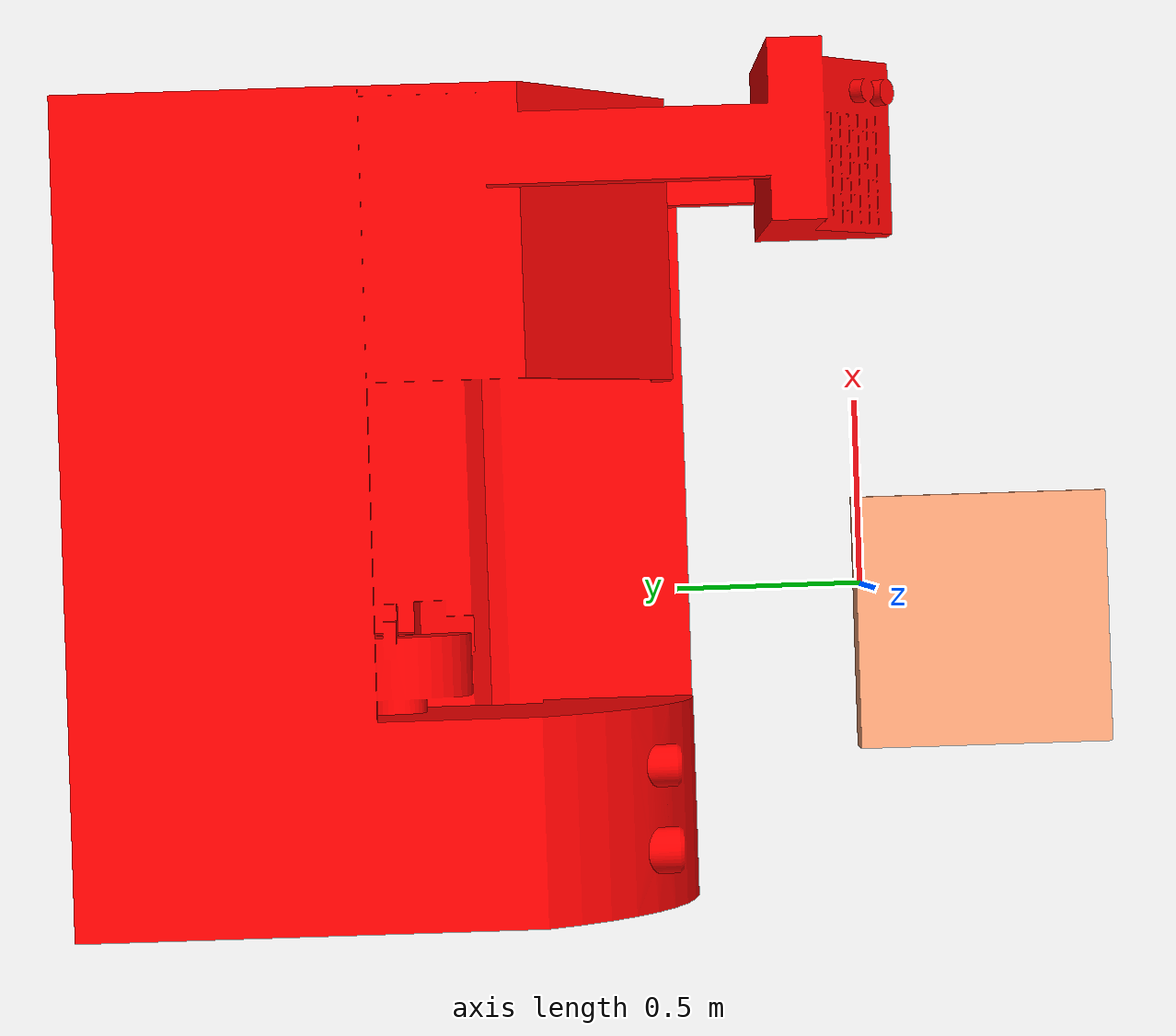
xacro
<?xml version="1.0" ?>
<robot name="NIST_Robot" xmlns:xacro="http://ros.org/wiki/xacro">

	<!-- parameters -->
	<xacro:property name="platform_thickness" value="0.1"/>

	<!-- color definitions -->
  <material name="blue">
    <color rgba="0 0 1 1"/>
  </material>
  <material name="yellow">
    <color rgba="1 1 0 1"/>
  </material>
  <material name="orange">
    <color rgba="1 0.66 0.48 1"/>
  </material>
  <material name="red">
    <color rgba="1 0 0 1"/>
  </material>
  <material name="light_blue">
    <color rgba="0.78 0.94 0.965 1"/>
  </material>

  <!-- robot definitions, also defined in robot urdf -->
	<link name="base_link"/>
	<!-- link definitions -->
	<link name="world_frame"/>
	<link name="robot_platform_link">
		<visual>
			<origin xyz="0.0 0.0 -${platform_thickness * 0.5}" rpy="0 0 0"/>
			<geometry>
				<box size="0.5 0.5 ${platform_thickness}"/>
			</geometry>
			<material name="orange"/>
		</visual>
	</link>
	<link name="cnc_link">
		<visual>
			<geometry>
        <mesh filename="package://mtconnect_example_launch/meshes/cnc_lathe.STL"/>
			</geometry>
			<material name="red"/>
		</visual>
	</link>

	<!-- joint definitions -->
	<joint name="world_to_platform_joint" type ="fixed">
		<origin xyz="0 0 3" rpy="3.1417 0 0"/>
		<parent link="world_frame"/>
		<child link="robot_platform_link"/>
	</joint>
	<joint name="world_to_cnc_joint" type ="fixed">
		<origin xyz="-0.75 2.0 0" rpy="1.5708 0 0"/>
		<parent link="world_frame"/>
		<child link="cnc_link"/>
	</joint>
	<joint name="platform_to_base_joint" type ="fixed">
		<origin xyz="0 0 0" rpy="0 0 0"/>
		<parent link="robot_platform_link"/>
		<child link="base_link"/>
	</joint>

</robot>
